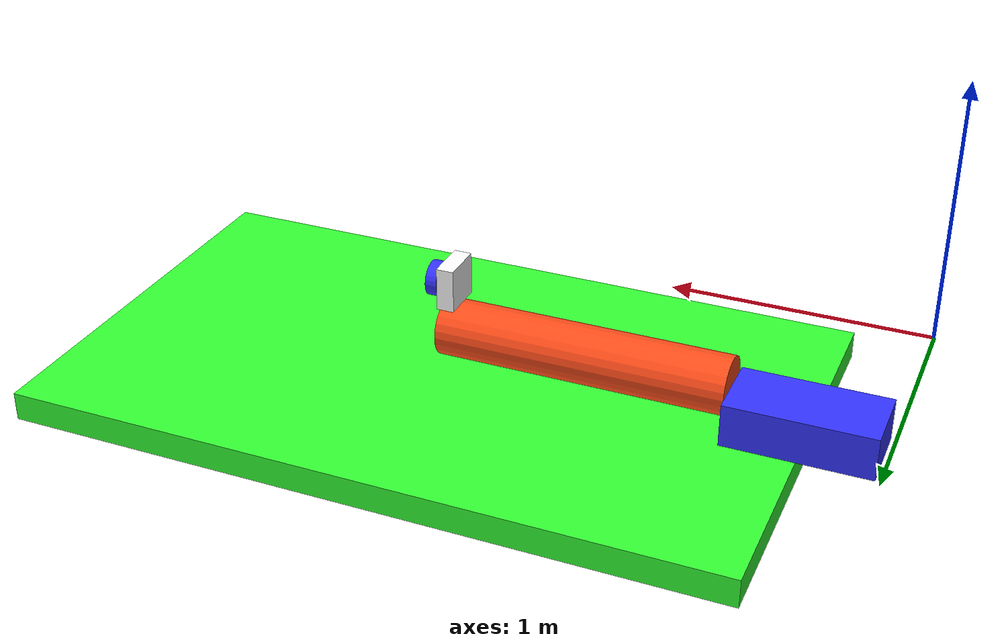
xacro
<?xml version="1.0"?>
<robot xmlns:xacro="http://www.ros.org/wiki/xacro"  name="robot">

    <xacro:include filename="robot_include.xacro" />

    <link name="world"/>

    <joint name="base_joint" type="fixed">
        <parent link="world"/>
        <child link="base_link"/>
        <origin xyz="1.5 1.0 0.0" rpy="0.0 0.0 0.0"/>
    </joint>

    <link name="base_link">
        <inertial>
            <origin xyz="0.0 0.0 0.05" rpy="0.0 0.0 0.0"/>
            <mass value="12.0"/>
            <inertia ixx="2.26" ixy="0.0" ixz="0.0" iyy="6.26" iyz="0.0" izz="8.5"/>
        </inertial>
        <visual>
            <origin xyz="0.0 0.0 0.05" rpy="0.0 0.0 0.0"/>
            <geometry>
                <box size="2.5 1.5 0.1"/>
            </geometry>
            <material name="green">
                <color rgba="0.2 1.0 0.2 1.0"/>
            </material>
        </visual>
        <collision>
            <origin xyz="0.0 0.0 0.05" rpy="0.0 0.0 0.0"/>
            <geometry>
                <box size="2.5 1.5 0.1"/>
            </geometry>
        </collision>
    </link>

    <joint name="slider_joint" type="prismatic">
        <parent link="base_link"/>
        <child link="slider_link"/>
        <axis xyz="1 0 0"/>
        <limit lower="0" upper="2" velocity="100" effort="100.0"/>
        <origin xyz="-1.25 0 0.1" rpy="0 0 0"/>
    </joint>

    <link name="slider_link">
        <visual>
            <origin xyz="0.0 0.0 0.075" rpy="0.0 0.0 0.0"/>
            <geometry>
                <box size="0.5 0.25 0.15"/>
            </geometry>
            <material name="blue"/>
        </visual>
        <collision>
            <origin xyz="0.0 0.0 0.075" rpy="0.0 0.0 0.0"/>
            <geometry>
                <box size="0.5 0.25 0.15"/>
            </geometry>
        </collision>
    </link>

    <joint name="arm_joint" type="revolute">
        <parent link="slider_link"/>
        <child link="arm_link"/>
        <axis xyz="0 -1 0"/>
        <limit lower="0" upper="${pi/2}" velocity="100.0" effort="100.0"/>
        <origin xyz="0.25 0 0.15" rpy="0 0 0"/>
    </joint>

    <xacro:property name="arm_length" value="1" />
    <xacro:property name="arm_radius" value="0.1" />
    <link name="arm_link">
        <visual>
            <origin xyz="${arm_length/2} 0 0" rpy="0 ${pi/2} 0"/>
            <geometry>
                <cylinder length="${arm_length}" radius="${arm_radius}" />
            </geometry>
            <material name="orange" />
        </visual>
        <collision>
            <origin xyz="${arm_length/2} 0 0" rpy="0 ${pi/2} 0"/>
            <geometry>
                <cylinder length="${arm_length}" radius="${arm_radius}" />
            </geometry>
        </collision>
        <xacro:inertial_cylinder mass="1.0" length="${arm_length}" radius="${arm_radius}">
            <origin xyz="${arm_length/2} 0 0" rpy="0 ${pi/2} 0"/>
        </xacro:inertial_cylinder>
    </link>

    <joint name="camera_joint" type="fixed">
        <parent link="arm_link"/>
        <child link="camera_link"/>
        <origin xyz="${arm_length} 0.0 ${arm_radius + 0.075}" rpy="0.0 0.0 0.0"/>
    </joint>

    <link name="camera_link">
        <visual>
            <origin xyz="-0.03 0.0 0.0" rpy="0.0 0.0 0.0"/>
            <geometry>
                <box size="0.06 0.15 0.15"/>
            </geometry>
            <material name="white"/>
        </visual>
        <visual>
            <origin xyz="0.03 0.0 0.0" rpy="0.0 ${pi/2} 0.0"/>
            <geometry>
                <cylinder radius="0.06" length="0.04"/>
            </geometry>
            <material name="blue"/>
        </visual>
        <collision>
            <origin xyz="0.0 0.0 0.0" rpy="0.0 0.0 0.0"/>
            <geometry>
                <box size="0.12 0.15 0.15"/>
            </geometry>
        </collision>
        <xacro:inertial_box mass="0.1" x="0.12" y="0.15" z="0.15">
            <origin xyz="0.0 0 0" rpy="0 0 0"/>
        </xacro:inertial_box>
    </link>

    <xacro:include filename="example_gazebo.xacro" />

</robot>

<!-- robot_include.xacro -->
<robot xmlns:xacro="http://www.ros.org/wiki/xacro">
    <material name="white">
        <color rgba="1.0 1.0 1.0 1.0"/>
    </material>
    <material name="orange">
        <color rgba="1.0 0.3 0.1 1.0"/>
    </material>
    <material name="blue">
        <color rgba="0.2 0.2 1 1.0"/>
    </material>

    <xacro:macro name="inertial_sphere" params="mass radius *origin">
        <inertial>
            <xacro:insert_block name="origin"/>
            <mass value="${mass}"/>
            <inertia ixx="${(2/5)* mass * (radius*radius)}" ixy="0.0" ixz="0.0"
                    iyy="${(2/5)* mass * (radius*radius)}" iyz="0.0"
                    izz="${(2/5)* mass * (radius*radius)}"/>

        </inertial>
    </xacro:macro>
    <xacro:macro name="inertial_box" params="mass x y z *origin">
        <inertial>
            <xacro:insert_block name="origin"/>
            <mass value="${mass}"/>
           <inertia ixx="${(1/12)* mass * (y*y+z*z)}" ixy="0.0" ixz="0.0"
                   iyy="${(1/12)* mass * (x*x+z*z)}" iyz="0.0"
                   izz="${(1/12)* mass * (x*x+y*y)}"/>
        </inertial>
    </xacro:macro>

    <xacro:macro name="inertial_cylinder" params="mass length radius *origin">
        <inertial>
            <xacro:insert_block name="origin"/>
            <mass value="${mass}" />
            <inertia ixx="${(1/12) * mass * (3*radius*radius + length*length)}" ixy="0.0" ixz="0.0"
                    iyy="${(1/12) * mass * (3*radius*radius + length*length)}" iyz="0.0"
                    izz="${(1/2) * mass * (radius*radius)}" />
        </inertial>
    </xacro:macro>

</robot>
